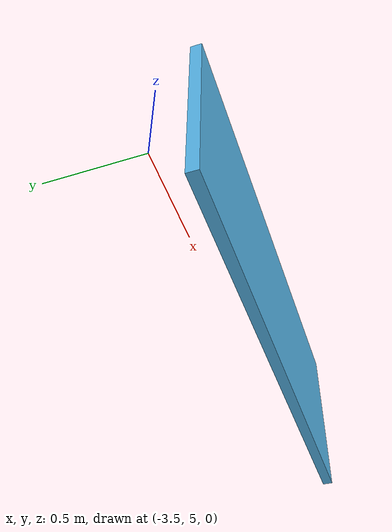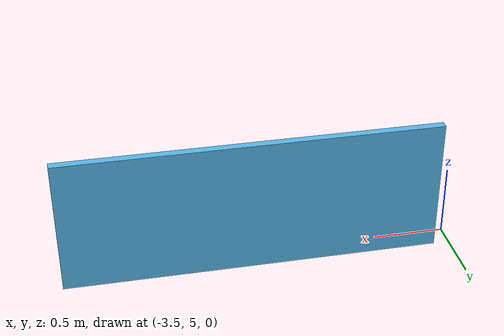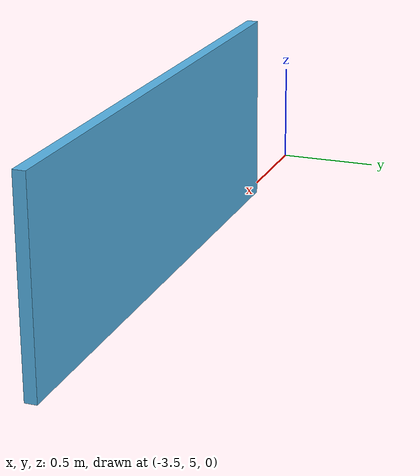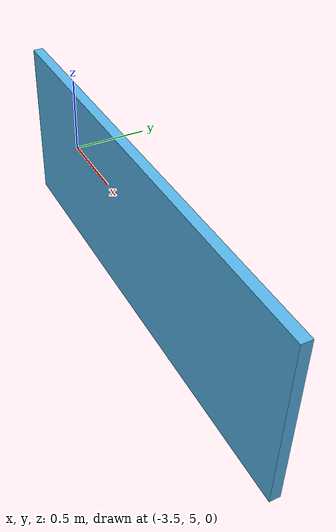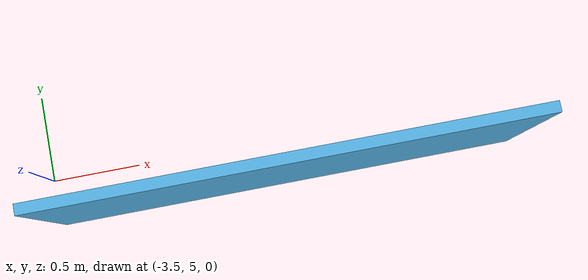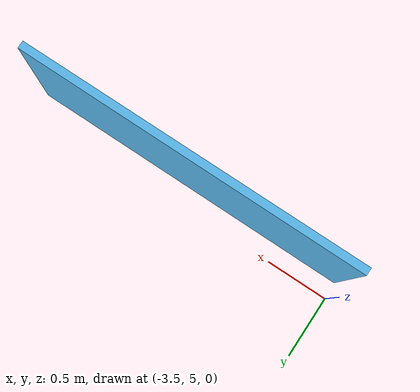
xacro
<?xml version="1.0"?>
<robot xmlns:xacro="http://www.ros.org/wiki/xacro"
       name="ipa-kitchen">

  <xacro:include filename="$(find cob_gazebo_worlds)/urdf/common.xacro" />
  <xacro:include filename="$(find cob_gazebo_worlds)/urdf/materials.urdf.xacro" />

  <xacro:macro name="ipa-kitchen" params="name">

  <gazebo>
    <plugin name="environment_gazebo_ros_control" filename="libgazebo_ros_control.so">
      <robotNamespace>world</robotNamespace>
      <robotParam>/world_description</robotParam>
    </plugin>
  </gazebo>

  <!-- world -->
  <link name="world"/>

  <!-- walls -->
  <!-- wall_00 -->
  <link name="wall_00">
    <xacro:box_inertial x="2.75" y="0.06" z="0.50" mass="5.0">
      <origin xyz="0 0 0" rpy="0 0 0" />
    </xacro:box_inertial>
    <visual>
      <origin xyz="0 0 0" />
      <geometry>
        <box size="2.75 0.06 1.0" />
      </geometry>
    </visual>
    <collision>
      <origin xyz="0 0 0" />
      <geometry>
        <box size="2.77 0.08 1.02" />
      </geometry>
    </collision>
  </link>

  <gazebo reference="wall_00">
    <material>IPA/Wall</material>
  </gazebo>

  <joint name="joint_wall_00" type="fixed">
    <origin xyz="-2.156 4.791 0.250" rpy="0 0 0" />
    <parent link="world" />
    <child link="wall_00" />
  </joint>

  </xacro:macro>

  <xacro:ipa-kitchen name="ipa-kitchen" />

</robot>
